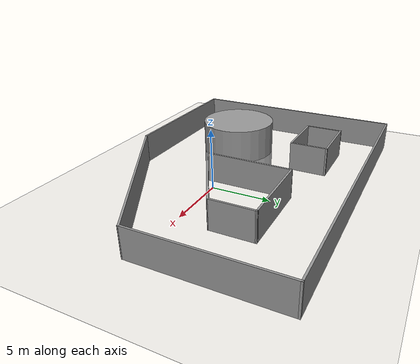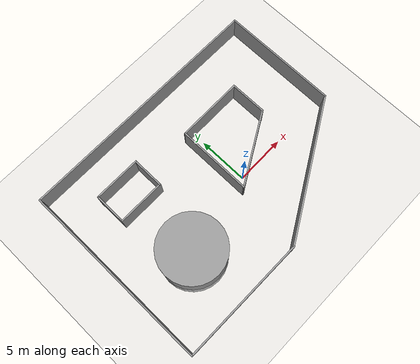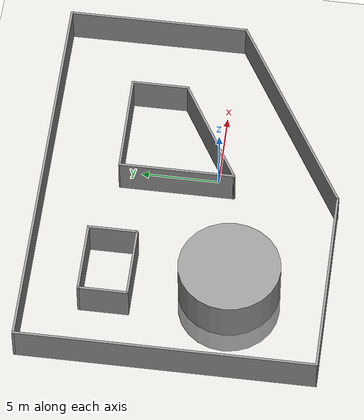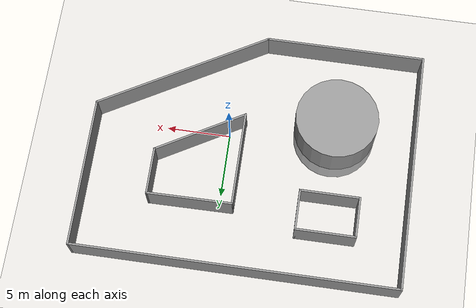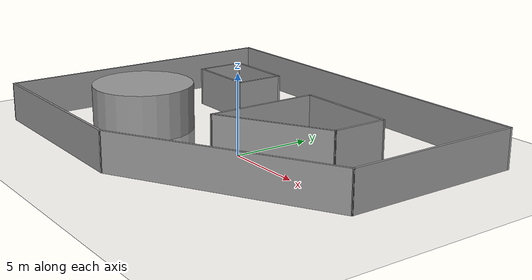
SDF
<sdf version="1.7">
 <world name="default">
  <light name="sun" type="directional">
   <pose>0 0 10 0 -0 0</pose>
   <diffuse>0.8 0.8 0.8 1</diffuse>
   <specular>0.2 0.2 0.2 1</specular>
   <attenuation>
    <range>1000</range>
    <constant>0.9</constant>
    <linear>0.01</linear>
    <quadratic>0.001</quadratic>
   </attenuation>
   <direction>-0.5 0.1 -0.9</direction>
   <spot><inner_angle>0</inner_angle><outer_angle>0</outer_angle><falloff>0</falloff></spot>
  </light>
  <model name="ground_plane">
   <static>1</static>
   <link name="link">
    <collision name="collision">
     <geometry><plane><normal>0 0 1</normal><size>100 100</size></plane></geometry>
     <surface><friction><ode><mu>100</mu><mu2>50</mu2></ode></friction></surface>
    </collision>
    <visual name="visual">
     <cast_shadows>0</cast_shadows>
     <geometry><plane><normal>0 0 1</normal><size>100 100</size></plane></geometry>
     <material>
      <script><uri>file://media/materials/scripts/gazebo.material</uri><name>Gazebo/Grey</name></script>
     </material>
    </visual>
   </link>
  </model>
  <gravity>0 0 -9.8</gravity>
  <magnetic_field>6e-06 2.3e-05 -4.2e-05</magnetic_field>
  <atmosphere type="adiabatic"/>
  <physics type="ode">
   <max_step_size>0.001</max_step_size>
   <real_time_factor>1</real_time_factor>
   <real_time_update_rate>1000</real_time_update_rate>
  </physics>
  <scene><ambient>0.4 0.4 0.4 1</ambient><background>0.7 0.7 0.7 1</background><shadows>1</shadows></scene>
  <audio><device>default</device></audio>
  <spherical_coordinates>
   <surface_model>EARTH_WGS84</surface_model>
   <latitude_deg>0</latitude_deg>
   <longitude_deg>0</longitude_deg>
   <elevation>0</elevation>
   <heading_deg>0</heading_deg>
  </spherical_coordinates>
  <model name="map3-Scale2.5">
   <pose>-1.91928 1.60455 0 0 -0 0</pose>
   <link name="Wall_11">
    <collision name="Wall_11_Collision">
     <geometry><box><size>3.25 0.15 2.5</size></box></geometry>
     <pose>0 0 1.25 0 -0 0</pose>
    </collision>
    <visual name="Wall_11_Visual">
     <pose>0 0 1.25 0 -0 0</pose>
     <geometry><box><size>3.25 0.15 2.5</size></box></geometry>
     <material>
      <script><uri>file://media/materials/scripts/gazebo.material</uri><name>Gazebo/Grey</name></script>
      <ambient>1 1 1 1</ambient>
     </material>
     <meta><layer>0</layer></meta>
    </visual>
    <pose>-8.7945 4.40938 0 0 -0 -1.5708</pose>
   </link>
   <link name="Wall_12">
    <collision name="Wall_12_Collision">
     <geometry><box><size>4.75 0.15 2.5</size></box></geometry>
     <pose>0 0 1.25 0 -0 0</pose>
    </collision>
    <visual name="Wall_12_Visual">
     <pose>0 0 1.25 0 -0 0</pose>
     <geometry><box><size>4.75 0.15 2.5</size></box></geometry>
     <material>
      <script><uri>file://media/materials/scripts/gazebo.material</uri><name>Gazebo/Grey</name></script>
      <ambient>1 1 1 1</ambient>
     </material>
     <meta><layer>0</layer></meta>
    </visual>
    <pose>-6.4945 2.85938 0 0 -0 0</pose>
   </link>
   <link name="Wall_13">
    <collision name="Wall_13_Collision">
     <geometry><box><size>3.25 0.15 2.5</size></box></geometry>
     <pose>0 0 1.25 0 -0 0</pose>
    </collision>
    <visual name="Wall_13_Visual">
     <pose>0 0 1.25 0 -0 0</pose>
     <geometry><box><size>3.25 0.15 2.5</size></box></geometry>
     <material>
      <script><uri>file://media/materials/scripts/gazebo.material</uri><name>Gazebo/Grey</name></script>
      <ambient>1 1 1 1</ambient>
     </material>
     <meta><layer>0</layer></meta>
    </visual>
    <pose>-4.1945 4.40938 0 0 -0 1.5708</pose>
   </link>
   <link name="Wall_16">
    <collision name="Wall_16_Collision">
     <geometry><box><size>4.75 0.15 2.5</size></box></geometry>
     <pose>0 0 1.25 0 -0 0</pose>
    </collision>
    <visual name="Wall_16_Visual">
     <pose>0 0 1.25 0 -0 0</pose>
     <geometry><box><size>4.75 0.15 2.5</size></box></geometry>
     <material>
      <script><uri>file://media/materials/scripts/gazebo.material</uri><name>Gazebo/Grey</name></script>
      <ambient>1 1 1 1</ambient>
     </material>
     <meta><layer>0</layer></meta>
    </visual>
    <pose>-6.4945 5.95938 0 0 -0 0</pose>
   </link>
   <link name="Wall_18">
    <collision name="Wall_18_Collision">
     <geometry><box><size>7.5 0.15 2.5</size></box></geometry>
     <pose>0 0 1.25 0 -0 0</pose>
    </collision>
    <visual name="Wall_18_Visual">
     <pose>0 0 1.25 0 -0 0</pose>
     <geometry><box><size>7.5 0.15 2.5</size></box></geometry>
     <material>
      <script><uri>file://media/materials/scripts/gazebo.material</uri><name>Gazebo/Grey</name></script>
      <ambient>1 1 1 1</ambient>
     </material>
     <meta><layer>0</layer></meta>
    </visual>
    <pose>0.805497 0.98003 0 0 -0 -1.5708</pose>
   </link>
   <link name="Wall_19">
    <collision name="Wall_19_Collision">
     <geometry><box><size>7.75 0.15 2.5</size></box></geometry>
     <pose>0 0 1.25 0 -0 0</pose>
    </collision>
    <visual name="Wall_19_Visual">
     <pose>0 0 1.25 0 -0 0</pose>
     <geometry><box><size>7.75 0.15 2.5</size></box></geometry>
     <material>
      <script><uri>file://media/materials/scripts/gazebo.material</uri><name>Gazebo/Grey</name></script>
      <ambient>1 1 1 1</ambient>
     </material>
     <meta><layer>0</layer></meta>
    </visual>
    <pose>4.09639 -0.79497 0 0 -0 0.523599</pose>
   </link>
   <link name="Wall_2">
    <collision name="Wall_2_Collision">
     <geometry><box><size>14.75 0.15 2.5</size></box></geometry>
     <pose>0 0 1.25 0 -0 0</pose>
    </collision>
    <visual name="Wall_2_Visual">
     <pose>0 0 1.25 0 -0 0</pose>
     <geometry><box><size>14.75 0.15 2.5</size></box></geometry>
     <material>
      <script><uri>file://media/materials/scripts/gazebo.material</uri><name>Gazebo/Grey</name></script>
      <ambient>1 1 1 1</ambient>
     </material>
     <meta><layer>0</layer></meta>
    </visual>
    <pose>6.21444 -5.78627 0 0 -0 0.523599</pose>
   </link>
   <link name="Wall_20">
    <collision name="Wall_20_Collision">
     <geometry><box><size>3.75 0.15 2.5</size></box></geometry>
     <pose>0 0 1.25 0 -0 0</pose>
    </collision>
    <visual name="Wall_20_Visual">
     <pose>0 0 1.25 0 -0 0</pose>
     <geometry><box><size>3.75 0.15 2.5</size></box></geometry>
     <material>
      <script><uri>file://media/materials/scripts/gazebo.material</uri><name>Gazebo/Grey</name></script>
      <ambient>1 1 1 1</ambient>
     </material>
     <meta><layer>0</layer></meta>
    </visual>
    <pose>7.38729 2.90503 0 0 -0 1.5708</pose>
   </link>
   <link name="Wall_21">
    <collision name="Wall_21_Collision">
     <geometry><box><size>6.73198 0.15 2.5</size></box></geometry>
     <pose>0 0 1.25 0 -0 0</pose>
    </collision>
    <visual name="Wall_21_Visual">
     <pose>0 0 1.25 0 -0 0</pose>
     <geometry><box><size>6.73198 0.15 2.5</size></box></geometry>
     <material>
      <script><uri>file://media/materials/scripts/gazebo.material</uri><name>Gazebo/Grey</name></script>
      <ambient>1 1 1 1</ambient>
     </material>
     <meta><layer>0</layer></meta>
    </visual>
    <pose>4.09639 4.68003 0 0 -0 -3.134</pose>
   </link>
   <link name="Wall_23">
    <collision name="Wall_23_Collision">
     <geometry><box><size>1.75 0.15 2.5</size></box></geometry>
     <pose>0 0 1.25 0 -0 0</pose>
    </collision>
    <visual name="Wall_23_Visual">
     <pose>0 0 1.25 0 -0 0</pose>
     <geometry><box><size>1.75 0.15 2.5</size></box></geometry>
     <material>
      <script><uri>file://media/materials/scripts/gazebo.material</uri><name>Gazebo/Grey</name></script>
      <ambient>1 1 1 1</ambient>
     </material>
     <meta><layer>0</layer></meta>
    </visual>
    <pose>-7.95149 -1.28457 0 0 -0 -2.35619</pose>
   </link>
   <link name="Wall_24">
    <collision name="Wall_24_Collision">
     <geometry><box><size>2 0.15 2.5</size></box></geometry>
     <pose>0 0 1.25 0 -0 0</pose>
    </collision>
    <visual name="Wall_24_Visual">
     <pose>0 0 1.25 0 -0 0</pose>
     <geometry><box><size>2 0.15 2.5</size></box></geometry>
     <material>
      <script><uri>file://media/materials/scripts/gazebo.material</uri><name>Gazebo/Grey</name></script>
      <ambient>1 1 1 1</ambient>
     </material>
     <meta><layer>0</layer></meta>
    </visual>
    <pose>-8.75659 -2.74374 0 0 -0 -1.8326</pose>
   </link>
   <link name="Wall_25">
    <collision name="Wall_25_Collision">
     <geometry><box><size>2 0.15 2.5</size></box></geometry>
     <pose>0 0 1.25 0 -0 0</pose>
    </collision>
    <visual name="Wall_25_Visual">
     <pose>0 0 1.25 0 -0 0</pose>
     <geometry><box><size>2 0.15 2.5</size></box></geometry>
     <material>
      <script><uri>file://media/materials/scripts/gazebo.material</uri><name>Gazebo/Grey</name></script>
      <ambient>1 1 1 1</ambient>
     </material>
     <meta><layer>0</layer></meta>
    </visual>
    <pose>-8.53349 -4.43829 0 0 -0 -1.0472</pose>
   </link>
   <link name="Wall_26">
    <collision name="Wall_26_Collision">
     <geometry><box><size>1.5 0.15 2.5</size></box></geometry>
     <pose>0 0 1.25 0 -0 0</pose>
    </collision>
    <visual name="Wall_26_Visual">
     <pose>0 0 1.25 0 -0 0</pose>
     <geometry><box><size>1.5 0.15 2.5</size></box></geometry>
     <material>
      <script><uri>file://media/materials/scripts/gazebo.material</uri><name>Gazebo/Grey</name></script>
      <ambient>1 1 1 1</ambient>
     </material>
     <meta><layer>0</layer></meta>
    </visual>
    <pose>-7.41899 -5.41407 0 0 -0 -0.261799</pose>
   </link>
   <link name="Wall_27">
    <collision name="Wall_27_Collision">
     <geometry><box><size>1.75 0.15 2.5</size></box></geometry>
     <pose>0 0 1.25 0 -0 0</pose>
    </collision>
    <visual name="Wall_27_Visual">
     <pose>0 0 1.25 0 -0 0</pose>
     <geometry><box><size>1.75 0.15 2.5</size></box></geometry>
     <material>
      <script><uri>file://media/materials/scripts/gazebo.material</uri><name>Gazebo/Grey</name></script>
      <ambient>1 1 1 1</ambient>
     </material>
     <meta><layer>0</layer></meta>
    </visual>
    <pose>-5.96699 -5.58877 0 0 -0 0</pose>
   </link>
   <link name="Wall_28">
    <collision name="Wall_28_Collision">
     <geometry><box><size>2 0.15 2.5</size></box></geometry>
     <pose>0 0 1.25 0 -0 0</pose>
    </collision>
    <visual name="Wall_28_Visual">
     <pose>0 0 1.25 0 -0 0</pose>
     <geometry><box><size>2 0.15 2.5</size></box></geometry>
     <material>
      <script><uri>file://media/materials/scripts/gazebo.material</uri><name>Gazebo/Grey</name></script>
      <ambient>1 1 1 1</ambient>
     </material>
     <meta><layer>0</layer></meta>
    </visual>
    <pose>-4.51292 -4.9347 0 0 -0 0.785398</pose>
   </link>
   <link name="Wall_29">
    <collision name="Wall_29_Collision">
     <geometry><box><size>1.25 0.15 2.5</size></box></geometry>
     <pose>0 0 1.25 0 -0 0</pose>
    </collision>
    <visual name="Wall_29_Visual">
     <pose>0 0 1.25 0 -0 0</pose>
     <geometry><box><size>1.25 0.15 2.5</size></box></geometry>
     <material>
      <script><uri>file://media/materials/scripts/gazebo.material</uri><name>Gazebo/Grey</name></script>
      <ambient>1 1 1 1</ambient>
     </material>
     <meta><layer>0</layer></meta>
    </visual>
    <pose>-3.58385 -3.80431 0 0 -0 1.0472</pose>
   </link>
   <link name="Wall_3">
    <collision name="Wall_3_Collision">
     <geometry><box><size>11.75 0.15 2.5</size></box></geometry>
     <pose>0 0 1.25 0 -0 0</pose>
    </collision>
    <visual name="Wall_3_Visual">
     <pose>0 0 1.25 0 -0 0</pose>
     <geometry><box><size>11.75 0.15 2.5</size></box></geometry>
     <material>
      <script><uri>file://media/materials/scripts/gazebo.material</uri><name>Gazebo/Grey</name></script>
      <ambient>1 1 1 1</ambient>
     </material>
     <meta><layer>0</layer></meta>
    </visual>
    <pose>12.5364 3.66372 0 0 -0 1.5708</pose>
   </link>
   <link name="Wall_30">
    <collision name="Wall_30_Collision">
     <geometry><box><size>2 0.15 2.5</size></box></geometry>
     <pose>0 0 1.25 0 -0 0</pose>
    </collision>
    <visual name="Wall_30_Visual">
     <pose>0 0 1.25 0 -0 0</pose>
     <geometry><box><size>2 0.15 2.5</size></box></geometry>
     <material>
      <script><uri>file://media/materials/scripts/gazebo.material</uri><name>Gazebo/Grey</name></script>
      <ambient>1 1 1 1</ambient>
     </material>
     <meta><layer>0</layer></meta>
    </visual>
    <pose>-3.77135 -2.52692 0 0 -0 2.0944</pose>
   </link>
   <link name="Wall_31">
    <collision name="Wall_31_Collision">
     <geometry><box><size>1.25 0.15 2.5</size></box></geometry>
     <pose>0 0 1.25 0 -0 0</pose>
    </collision>
    <visual name="Wall_31_Visual">
     <pose>0 0 1.25 0 -0 0</pose>
     <geometry><box><size>1.25 0.15 2.5</size></box></geometry>
     <material>
      <script><uri>file://media/materials/scripts/gazebo.material</uri><name>Gazebo/Grey</name></script>
      <ambient>1 1 1 1</ambient>
     </material>
     <meta><layer>0</layer></meta>
    </visual>
    <pose>-4.62275 -1.33694 0 0 -0 2.35619</pose>
   </link>
   <link name="Wall_32">
    <collision name="Wall_32_Collision">
     <geometry><box><size>1.5 0.15 2.5</size></box></geometry>
     <pose>0 0 1.25 0 -0 0</pose>
    </collision>
    <visual name="Wall_32_Visual">
     <pose>0 0 1.25 0 -0 0</pose>
     <geometry><box><size>1.5 0.15 2.5</size></box></geometry>
     <material>
      <script><uri>file://media/materials/scripts/gazebo.material</uri><name>Gazebo/Grey</name></script>
      <ambient>1 1 1 1</ambient>
     </material>
     <meta><layer>0</layer></meta>
    </visual>
    <pose>-5.66366 -0.773327 0 0 -0 2.87979</pose>
   </link>
   <link name="Wall_33">
    <collision name="Wall_33_Collision">
     <geometry><box><size>1.22688 0.15 2.5</size></box></geometry>
     <pose>0 0 1.25 0 -0 0</pose>
    </collision>
    <visual name="Wall_33_Visual">
     <pose>0 0 1.25 0 -0 0</pose>
     <geometry><box><size>1.22688 0.15 2.5</size></box></geometry>
     <material>
      <script><uri>file://media/materials/scripts/gazebo.material</uri><name>Gazebo/Grey</name></script>
      <ambient>1 1 1 1</ambient>
     </material>
     <meta><layer>0</layer></meta>
    </visual>
    <pose>-6.85074 -0.658754 0 0 -0 -3.02969</pose>
   </link>
   <link name="Wall_6">
    <collision name="Wall_6_Collision">
     <geometry><box><size>25.25 0.15 2.5</size></box></geometry>
     <pose>0 0 1.25 0 -0 0</pose>
    </collision>
    <visual name="Wall_6_Visual">
     <pose>0 0 1.25 0 -0 0</pose>
     <geometry><box><size>25.25 0.15 2.5</size></box></geometry>
     <material>
      <script><uri>file://media/materials/scripts/gazebo.material</uri><name>Gazebo/Grey</name></script>
      <ambient>1 1 1 1</ambient>
     </material>
     <meta><layer>0</layer></meta>
    </visual>
    <pose>-0.013576 9.46373 0 0 -0 3.14159</pose>
   </link>
   <link name="Wall_7">
    <collision name="Wall_7_Collision">
     <geometry><box><size>19 0.15 2.5</size></box></geometry>
     <pose>0 0 1.25 0 -0 0</pose>
    </collision>
    <visual name="Wall_7_Visual">
     <pose>0 0 1.25 0 -0 0</pose>
     <geometry><box><size>19 0.15 2.5</size></box></geometry>
     <material>
      <script><uri>file://media/materials/scripts/gazebo.material</uri><name>Gazebo/Grey</name></script>
      <ambient>1 1 1 1</ambient>
     </material>
     <meta><layer>0</layer></meta>
    </visual>
    <pose>-12.5636 0.038725 0 0 -0 -1.5708</pose>
   </link>
   <link name="Wall_9">
    <collision name="Wall_9_Collision">
     <geometry><box><size>12.6061 0.15 2.5</size></box></geometry>
     <pose>0 0 1.25 0 -0 0</pose>
    </collision>
    <visual name="Wall_9_Visual">
     <pose>0 0 1.25 0 -0 0</pose>
     <geometry><box><size>12.6061 0.15 2.5</size></box></geometry>
     <material>
      <script><uri>file://media/materials/scripts/gazebo.material</uri><name>Gazebo/Grey</name></script>
      <ambient>1 1 1 1</ambient>
     </material>
     <meta><layer>0</layer></meta>
    </visual>
    <pose>-6.33556 -9.41127 0 0 -0 -0.004014</pose>
   </link>
   <static>1</static>
  </model>
  <model name="unit_sphere">
   <link name="link_1">
    <inertial>
     <mass>204.68</mass>
     <inertia><ixx>941.266</ixx><ixy>0</ixy><ixz>0</ixz><iyy>941.266</iyy><iyz>0</iyz><izz>1078.97</izz></inertia>
    </inertial>
    <pose>0.048787 -0.110034 0 0 -0 0</pose>
    <visual name="visual">
     <geometry><cylinder><radius>3.247</radius><length>4.85341</length></cylinder></geometry>
     <material>
      <lighting>1</lighting>
      <script><uri>file://media/materials/scripts/gazebo.material</uri><name>Gazebo/Grey</name></script>
      <shader type="pixel"/>
     </material>
    </visual>
    <collision name="collision">
     <geometry><cylinder><radius>3.24701</radius><length>4.85341</length></cylinder></geometry>
     <surface>
      <friction>
       <ode><mu>1</mu><mu2>1</mu2><fdir1>0 0 0</fdir1><slip1>0</slip1><slip2>0</slip2></ode>
       <torsional>
        <coefficient>1</coefficient>
        <patch_radius>0</patch_radius>
        <surface_radius>0</surface_radius>
        <use_patch_radius>1</use_patch_radius>
        <ode><slip>0</slip></ode>
       </torsional>
      </friction>
      <bounce><restitution_coefficient>0</restitution_coefficient><threshold>1e+06</threshold></bounce>
      <contact>
       <collide_without_contact>0</collide_without_contact>
       <collide_without_contact_bitmask>1</collide_without_contact_bitmask>
       <collide_bitmask>1</collide_bitmask>
       <ode>
        <soft_cfm>0</soft_cfm>
        <soft_erp>0.2</soft_erp>
        <kp>1e+13</kp>
        <kd>1</kd>
        <max_vel>0.01</max_vel>
        <min_depth>0</min_depth>
       </ode>
       <bullet>
        <split_impulse>1</split_impulse>
        <split_impulse_penetration_threshold>-0.01</split_impulse_penetration_threshold>
        <soft_cfm>0</soft_cfm>
        <soft_erp>0.2</soft_erp>
        <kp>1e+13</kp>
        <kd>1</kd>
       </bullet>
      </contact>
     </surface>
    </collision>
   </link>
   <static>0</static>
   <pose>-8.29694 -1.53851 0.5 0 -0 0</pose>
  </model>
  <plugin name="gazebo_ros_state" filename="libgazebo_ros_state.so">
   <ros><namespace>/gazebo</namespace></ros>
   <update_rate>1.0</update_rate>
  </plugin>
 </world>
</sdf>
